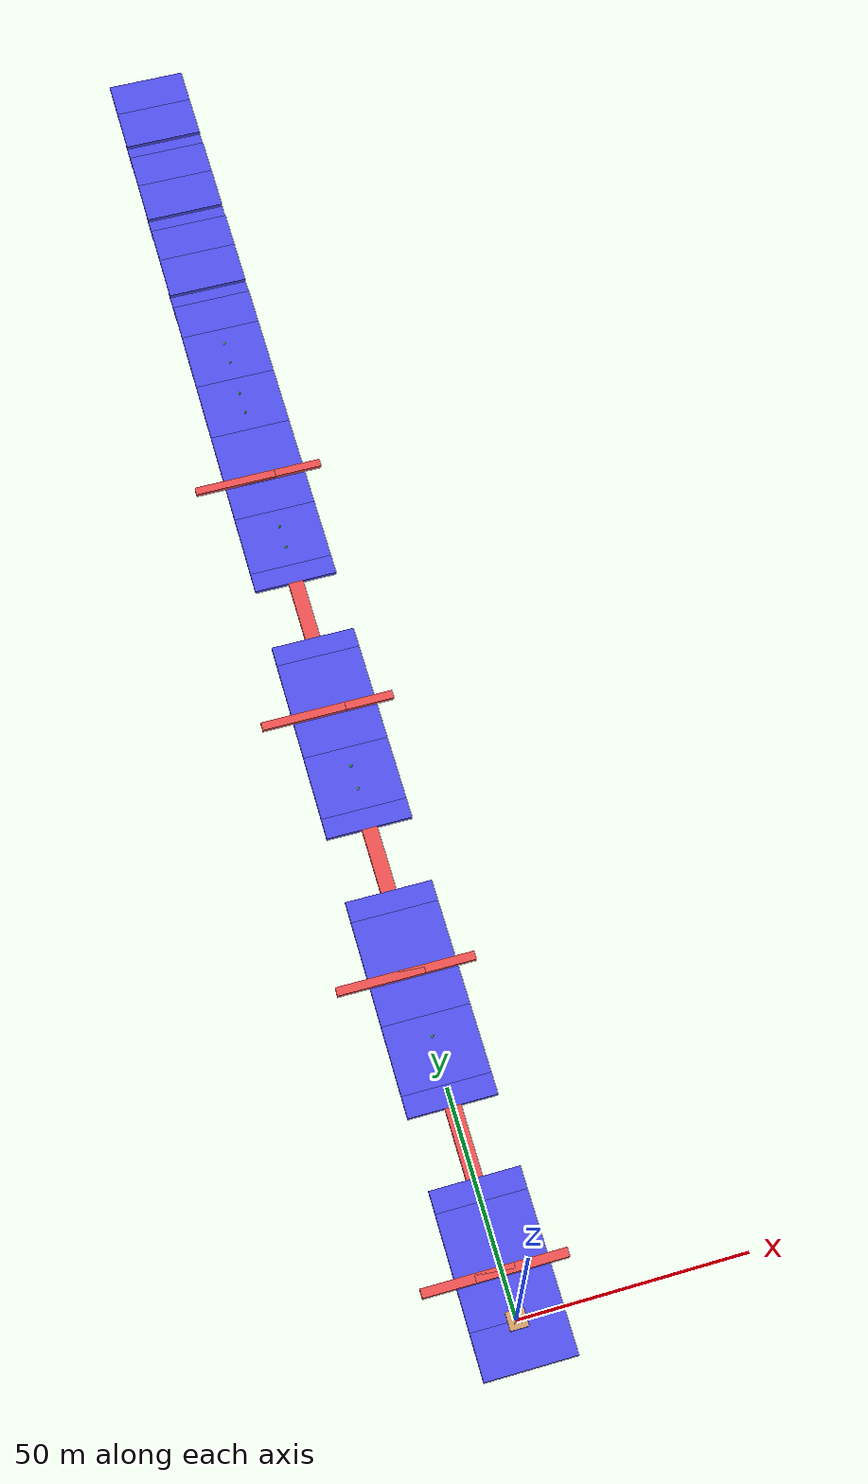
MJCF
<mujoco model="ant">
  <compiler angle="degree" coordinate="local" inertiafromgeom="true"/>
  <option integrator="RK4" timestep="0.01"/>
  <default>
    <joint armature="1" damping="1" limited="true"/>
    <geom conaffinity="1" condim="3" density="5.0" friction="0.5 0.5 0.5" margin="0.01" rgba="0.8 0.6 0.4 1"/>
  </default>
  <asset>
    <texture builtin="gradient" height="100" rgb1="1 1 1" rgb2="0 0 0" type="skybox" width="100"/>
    <texture builtin="flat" height="1278" mark="cross" markrgb="1 1 1" name="texgeom" random="0.01" rgb1="0.8 0.6 0.4" rgb2="0.8 0.6 0.4" type="cube" width="127"/>
    <texture builtin="checker" height="100" name="texplane" rgb1=".1 .2 .3" rgb2=".2 .3 .4" type="2d" width="100"/>
    <texture builtin="checker" height="100" name="texplane2" rgb1="1 1 1" rgb2=".2 .3 .4" type="2d" width="100"/>
    <material name="MatPlane" reflectance="0.5" shininess="1" specular="1" texrepeat="10 40" texture="texplane"/>
    <material name="MatPlane_2" reflectance="0.5" shininess="1" specular="1" texrepeat="5 5" texture="texplane2"/>
    <material name="geom" texture="texgeom" texuniform="true"/>
  </asset>
  <worldbody>
    <!-- test object -->

    <body name="box0" pos="0 0 0">
      <joint name="OBJTy0" pos="0 0 0" axis="0 1 0" type="slide" limited="false" damping="0" />
      <joint name="OBJTz0" pos="0 0 0" axis="0 0 1" type="slide" limited="false" damping="0" />
    <geom name="objGeom0"  priority = "2"  pos="0 0 0" size="2 1.95 0.5" type="box" friction="0 0 0.5"  mass="0.000001"/>
    </body>
    <body name="box1" pos="0 0 0">
      <joint name="OBJTy1" pos="0 0 0" axis="0 1 0" type="slide" limited="false" damping="0" />
      <joint name="OBJTz1" pos="0 0 0" axis="0 0 1" type="slide" limited="false" damping="0" />
    <geom name="objGeom1"  priority = "2"  pos="0 0 0" size="2 1.95 0.5" type="box" friction="0 0 0.5"  mass="0.000001"/>
    </body>
    <body name="box2" pos="0 0 0">
      <joint name="OBJTy2" pos="0 0 0" axis="0 1 0" type="slide" limited="false" damping="0" />
      <joint name="OBJTz2" pos="0 0 0" axis="0 0 1" type="slide" limited="false" damping="0" />
    <geom name="objGeom2"  priority = "2"  pos="0 0 0" size="2 1.95 0.5" type="box" friction="0 0 0.5"  mass="0.000001"/>
    </body>

    <body name="agent_torso" pos="0 0 0.75">
      <camera name="track" mode="trackcom" pos="0 -3 0.3" xyaxes="1 0 0 0 0 1"/>
      <geom name="agent_torso_geom" pos="0 0 0" size="0.25" type="sphere" priority = "3"/>
      <joint armature="0" damping="0" limited="false" margin="0.01" name="root" pos="0 0 0" type="free"/>
      <body name="agent_front_left_leg" pos="0 0 0">
        <geom fromto="0.0 0.0 0.0 0.2 0.2 0.0" name="aux_1_geom" size="0.08" type="capsule" priority = "3"/>
        <body name="aux_1" pos="0.2 0.2 0">
          <joint axis="0 0 1" name="hip_1" pos="0.0 0.0 0.0" range="-30 30" type="hinge"/>
          <geom fromto="0.0 0.0 0.0 0.2 0.2 0.0" name="agent_left_leg_geom" size="0.08" type="capsule" priority = "3"/>
          <body pos="0.2 0.2 0">
            <joint axis="-1 1 0" name="ankle_1" pos="0.0 0.0 0.0" range="30 70" type="hinge"/>
            <geom fromto="0.0 0.0 0.0 0.4 0.4 0.0" name="agent_left_ankle_geom" size="0.08" type="capsule" priority = "3"/>
          </body>
        </body>
      </body>
      <body name="agent_front_right_leg" pos="0 0 0">
        <geom fromto="0.0 0.0 0.0 -0.2 0.2 0.0" name="aux_2_geom" size="0.08" type="capsule" priority = "3"/>
        <body name="aux_2" pos="-0.2 0.2 0">
          <joint axis="0 0 1" name="hip_2" pos="0.0 0.0 0.0" range="-30 30" type="hinge"/>
          <geom fromto="0.0 0.0 0.0 -0.2 0.2 0.0" name="agent_right_leg_geom" size="0.08" type="capsule" priority = "3"/>
          <body pos="-0.2 0.2 0">
            <joint axis="1 1 0" name="ankle_2" pos="0.0 0.0 0.0" range="-70 -30" type="hinge"/>
            <geom fromto="0.0 0.0 0.0 -0.4 0.4 0.0" name="agent_right_ankle_geom" size="0.08" type="capsule" priority = "3"/>
          </body>
        </body>
      </body>
      <body name="agent_back_leg" pos="0 0 0">
        <geom fromto="0.0 0.0 0.0 -0.2 -0.2 0.0" name="aux_3_geom" size="0.08" type="capsule" priority = "3"/>
        <body name="aux_3" pos="-0.2 -0.2 0">
          <joint axis="0 0 1" name="hip_3" pos="0.0 0.0 0.0" range="-30 30" type="hinge"/>
          <geom fromto="0.0 0.0 0.0 -0.2 -0.2 0.0" name="agent_back_leg_geom" size="0.08" type="capsule" priority = "3"/>
          <body pos="-0.2 -0.2 0">
            <joint axis="-1 1 0" name="ankle_3" pos="0.0 0.0 0.0" range="-70 -30" type="hinge"/>
            <geom fromto="0.0 0.0 0.0 -0.4 -0.4 0.0" name="agent_third_ankle_geom" size="0.08" type="capsule" priority = "3"/>
          </body>
        </body>
      </body>
      <body name="agent_right_back_leg" pos="0 0 0">
        <geom fromto="0.0 0.0 0.0 0.2 -0.2 0.0" name="aux_4_geom" size="0.08" type="capsule" priority = "3"/>
        <body name="aux_4" pos="0.2 -0.2 0">
          <joint axis="0 0 1" name="hip_4" pos="0.0 0.0 0.0" range="-30 30" type="hinge"/>
          <geom fromto="0.0 0.0 0.0 0.2 -0.2 0.0" name="agent_rightback_leg_geom" size="0.08" type="capsule" priority = "3"/>
          <body pos="0.2 -0.2 0">
            <joint axis="1 1 0" name="ankle_4" pos="0.0 0.0 0.0" range="30 70" type="hinge"/>
            <geom fromto="0.0 0.0 0.0 0.4 -0.4 0.0" name="agent_fourth_ankle_geom" size="0.08" type="capsule" priority = "3"/>
          </body>
        </body>
      </body>
    </body>
    <geom name="curbleft0" pos="-7.35 10 0.5" conaffinity="1" rgba="0.9 0.3 0.3 1" size="10 1 0.5" type="box"/>
    <geom name="curbright0" pos="4.15 10 0.5" conaffinity="1" rgba="0.9 0.3 0.3 1" size="10 1 0.5" type="box"/>
    <geom name="curbleft1" pos="-7.35 77 0.5" conaffinity="1" rgba="0.9 0.3 0.3 1" size="10 1 0.5" type="box"/>
    <geom name="curbright1" pos="4.15 77 0.5" conaffinity="1" rgba="0.9 0.3 0.3 1" size="10  1 0.5" type="box"/>
    <geom name="curbleft2" pos="-7.35 144 0.5" conaffinity="1" rgba="0.9 0.3 0.3 1" size="10 1 0.5" type="box"/>
    <geom name="curbright2" pos="4.15 144 0.5" conaffinity="1" rgba="0.9 0.3 0.3 1" size="10 1 0.5" type="box"/>
    <geom name="curbleft3" pos="-7.35 211 0.5" conaffinity="1" rgba="0.9 0.3 0.3 1" size="10 1 0.5" type="box"/>
    <geom name="curbright3" pos="4.15 211 0.5" conaffinity="1" rgba="0.9 0.3 0.3 1" size="10 1 0.5" type="box"/>

    <light cutoff="100" diffuse="1 1 1" dir="-0 0 -1.3" directional="true" exponent="1" pos="0 0 1.3" specular=".1 .1 .1"/>
    <geom name="startplane" pos="0 -5 -0.5" conaffinity="1" rgba="0.3 0.3 0.9 1" friction="1 1 1" size="10 5 0.5" type="box" priority = "3"/>

    <geom name="antgoal0_plane" pos="0 12.5 -0.5" conaffinity="1" rgba="0.3 0.3 0.9 1" friction="1 1 1" size="10 12.5 0.5" type="box" priority = "3"/>
    <geom name="antbridge0_frontplane" pos="0 27.5 -0.5" conaffinity="1" rgba="0.3 0.3 0.9 1" friction="1 1 1" size="10 2.5 0.5" type="box" priority = "3"/>
    <geom name="antbridge0_rearplane" pos="0 48.5 -0.5" conaffinity="1" rgba="0.3 0.3 0.9 1" friction="1 1 1" size="10 2.5 0.5" type="box" priority = "3"/>
    <geom name="antgather0_plane" pos="0 59 -0.5" conaffinity="1" rgba="0.3 0.3 0.9 1" friction="1 1 1" size="10 8 0.5" type="box" priority = "3"/>

    <geom name="antgoal1_plane" pos="0 79.5 -0.5" conaffinity="1" rgba="0.3 0.3 0.9 1" friction="1 1 1" size="10 12.5 0.5" type="box" priority = "3"/>
    <geom name="antbridge1_frontplane" pos="0 94.5 -0.5" conaffinity="1" rgba="0.3 0.3 0.9 1" friction="1 1 1" size="10 2.5 0.5" type="box" priority = "3"/>
    <geom name="antbridge1_rearplane" pos="0 115.5 -0.5" conaffinity="1" rgba="0.3 0.3 0.9 1" friction="1 1 1" size="10 2.5 0.5" type="box" priority = "3"/>
    <geom name="antgather1_plane" pos="0 126 -0.5" conaffinity="1" rgba="0.3 0.3 0.9 1" friction="1 1 1" size="10 8 0.5" type="box" priority = "3"/>

    <geom name="antgoal2_plane" pos="0 146.5 -0.5" conaffinity="1" rgba="0.3 0.3 0.9 1" friction="1 1 1" size="10 12.5 0.5" type="box" priority = "3"/>
    <geom name="antbridge2_frontplane" pos="0 161.5 -0.5" conaffinity="1" rgba="0.3 0.3 0.9 1" friction="1 1 1" size="10 2.5 0.5" type="box" priority = "3"/>
    <geom name="antbridge2_rearplane" pos="0 182.5 -0.5" conaffinity="1" rgba="0.3 0.3 0.9 1" friction="1 1 1" size="10 2.5 0.5" type="box" priority = "3"/>
    <geom name="antgather2_plane" pos="0 193 -0.5" conaffinity="1" rgba="0.3 0.3 0.9 1" friction="1 1 1" size="10 8 0.5" type="box" priority = "3"/>

    <geom name="antgoal3_plane" pos="0 213.5 -0.5" conaffinity="1" rgba="0.3 0.3 0.9 1" friction="1 1 1" size="10 12.5 0.5" type="box" priority = "3"/>
    <geom name="antgather3_plane" pos="0 234 -0.5" conaffinity="1" rgba="0.3 0.3 0.9 1" friction="1 1 1" size="10 8 0.5" type="box" priority = "3"/>
    <geom name="antgather4_plane" pos="0 250 -0.5" conaffinity="1" rgba="0.3 0.3 0.9 1" friction="1 1 1" size="10 8 0.5" type="box" priority = "3"/>

    <geom name="antbox0_frontplane" pos="0 263 -0.5" conaffinity="1" rgba="0.3 0.3 0.9 1" friction="1 1 1" size="10 5 0.5" type="box" />
    <geom name="antbox0_midplane" pos="0 270 -1.5" conaffinity="1" rgba="0.3 0.3 0.9 1" friction="1 1 1" size="10 4 0.5" type="box" />
    <geom name="antbox0_backplane" pos="0 278 -0.5" conaffinity="1" rgba="0.3 0.3 0.9 1" friction="1 1 1" size="10 6 0.5" type="box" />

    <geom name="antbox1_frontplane" pos="0 289 -0.5" conaffinity="1" rgba="0.3 0.3 0.9 1" friction="1 1 1" size="10 5 0.5" type="box" />
    <geom name="antbox1_midplane" pos="0 296 -1.5" conaffinity="1" rgba="0.3 0.3 0.9 1" friction="1 1 1" size="10 4 0.5" type="box" />
    <geom name="antbox1_backplane" pos="0 304 -0.5" conaffinity="1" rgba="0.3 0.3 0.9 1" friction="1 1 1" size="10 6 0.5" type="box" />

    <geom name="antbox2_frontplane" pos="0 315 -0.5" conaffinity="1" rgba="0.3 0.3 0.9 1" friction="1 1 1" size="10 5 0.5" type="box" />
    <geom name="antbox2_midplane" pos="0 322 -1.5" conaffinity="1" rgba="0.3 0.3 0.9 1" friction="1 1 1" size="10 4 0.5" type="box" />
    <geom name="antbox2_backplane" pos="0 330 -0.5" conaffinity="1" rgba="0.3 0.3 0.9 1" friction="1 1 1" size="10 6 0.5" type="box" />

    <geom name="finishplane" pos="0 341 -0.5" conaffinity="1" rgba="0.3 0.3 0.9 1" friction="1 1 1" size="10 5 0.5" type="box" priority = "3"/>

    <geom name="bridge0" pos="0 38 -0.5" conaffinity="1" rgba="0.9 0.3 0.3 1" size="1.8 8 0.5" type="box" />
    <geom name="bridge1" pos="0 105 -0.5" conaffinity="1" rgba="0.9 0.3 0.3 1" size="1.8 8 0.5" type="box" />
    <geom name="bridge2" pos="0 172 -0.5" conaffinity="1" rgba="0.9 0.3 0.3 1" size="1.8 8 0.5" type="box" />

    <geom name="coin_geom1_0" pos= "0 56 0.3" conaffinity="0" contype="0" type="sphere" size=".3" condim="3"  rgba="0.2 0.9 0.2 1" />
    <geom name="coin_geom2_0" conaffinity="0" contype="0" type="sphere" size=".3" condim="3"  pos="0 62 0.3" rgba="0.2 0.9 0.2 1" />
    <geom name="coin_geom1_1" pos= "0 123 0.3" conaffinity="0" contype="0" type="sphere" size=".3" condim="3"  rgba="0.2 0.9 0.2 1" />
    <geom name="coin_geom2_1" conaffinity="0" contype="0" type="sphere" size=".3" condim="3"  pos="0 129 0.3" rgba="0.2 0.9 0.2 1" />
    <geom name="coin_geom1_2" pos= "0 190 0.3" conaffinity="0" contype="0" type="sphere" size=".3" condim="3"  rgba="0.2 0.9 0.2 1" />
    <geom name="coin_geom2_2" conaffinity="0" contype="0" type="sphere" size=".3" condim="3"  pos="0 196 0.3" rgba="0.2 0.9 0.2 1" />
    <geom name="coin_geom1_3" pos= "0 231 0.3" conaffinity="0" contype="0" type="sphere" size=".3" condim="3"  rgba="0.2 0.9 0.2 1" />
    <geom name="coin_geom2_3" conaffinity="0" contype="0" type="sphere" size=".3" condim="3"  pos="0 237 0.3" rgba="0.2 0.9 0.2 1" />
    <geom name="coin_geom1_4" pos= "0 247 0.3" conaffinity="0" contype="0" type="sphere" size=".3" condim="3"  rgba="0.2 0.9 0.2 1" />
    <geom name="coin_geom2_4" conaffinity="0" contype="0" type="sphere" size=".3" condim="3"  pos="0 253 0.3" rgba="0.2 0.9 0.2 1" />
  </worldbody>
  <actuator>
    <motor ctrllimited="true" ctrlrange="-1.0 1.0" joint="hip_4" gear="150"/>
    <motor ctrllimited="true" ctrlrange="-1.0 1.0" joint="ankle_4" gear="150"/>
    <motor ctrllimited="true" ctrlrange="-1.0 1.0" joint="hip_1" gear="150"/>
    <motor ctrllimited="true" ctrlrange="-1.0 1.0" joint="ankle_1" gear="150"/>
    <motor ctrllimited="true" ctrlrange="-1.0 1.0" joint="hip_2" gear="150"/>
    <motor ctrllimited="true" ctrlrange="-1.0 1.0" joint="ankle_2" gear="150"/>
    <motor ctrllimited="true" ctrlrange="-1.0 1.0" joint="hip_3" gear="150"/>
    <motor ctrllimited="true" ctrlrange="-1.0 1.0" joint="ankle_3" gear="150"/>
  </actuator>
</mujoco>
